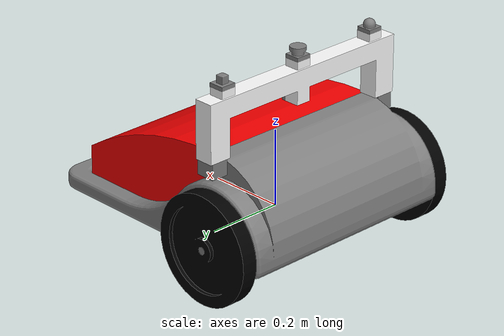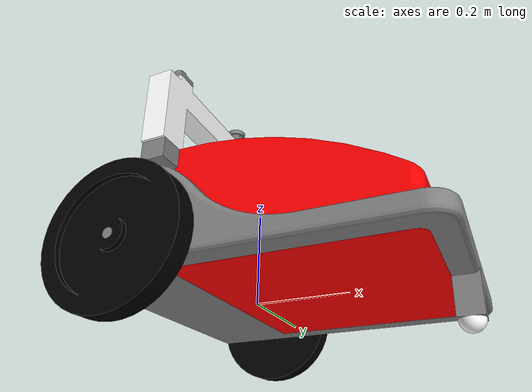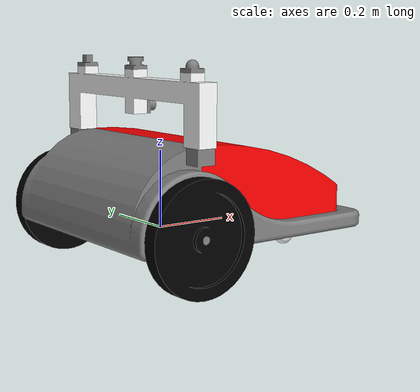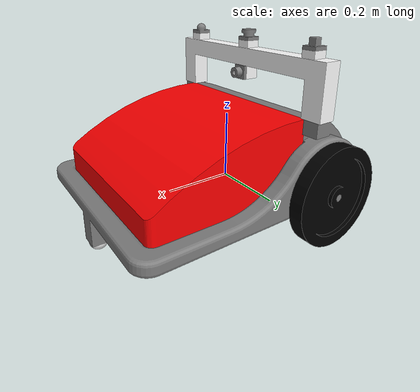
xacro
<?xml version="1.0" encoding="utf-8"?>
<robot
  name="sweeper_robot_description_package" xmlns:xacro="http:/www.ros.org/wiki/xacro">

  <xacro:include filename="$(find sweeper_robot_gazebo_package)/config/sweeper_robot_materials.gazebo" />
	<xacro:include filename="$(find sweeper_robot_gazebo_package)/config/sweeper_robot_physics.gazebo" />

  <link
    name="base_link">
    <inertial>
      <origin
        xyz="-0.086172 -1.9871E-10 0.093022"
        rpy="0 0 0" />
      <mass
        value="27.698" />
      <inertia
        ixx="1.0708"
        ixy="3.4417E-10"
        ixz="0.076631"
        iyy="0.74624"
        iyz="6.0482E-10"
        izz="1.5811" />
    </inertial>
    <visual>
      <origin
        xyz="0 0 0"
        rpy="0 0 0" />
      <geometry>
        <mesh
          filename="package://sweeper_robot_description_package/meshes/base_link.STL" />
      </geometry>
      <material
        name="">
        <color
          rgba="0.49804 0.49804 0.49804 1" />
      </material>
    </visual>
    <collision>
      <origin
        xyz="0 0 0"
        rpy="0 0 0" />
      <geometry>
        <mesh
          filename="package://sweeper_robot_description_package/meshes/base_link.STL" />
      </geometry>
    </collision>
  </link>
  <link
    name="left_wheel_link">
    <inertial>
      <origin
        xyz="0 -0.012515 -2.7756E-17"
        rpy="0 0 0" />
      <mass
        value="2.0986" />
      <inertia
        ixx="0.011156"
        ixy="1.763E-20"
        ixz="-2.2622E-20"
        iyy="0.02185"
        iyz="3.2087E-20"
        izz="0.011156" />
    </inertial>
    <visual>
      <origin
        xyz="0 0 0"
        rpy="0 0 0" />
      <geometry>
        <mesh
          filename="package://sweeper_robot_description_package/meshes/left_wheel_link.STL" />
      </geometry>
      <material
        name="">
        <color
          rgba="0 0 0 1" />
      </material>
    </visual>
    <collision>
      <origin
        xyz="0 0 0"
        rpy="0 0 0" />
      <geometry>
        <mesh
          filename="package://sweeper_robot_description_package/meshes/left_wheel_link.STL" />
      </geometry>
    </collision>
  </link>
  <joint
    name="left_wheel_joint"
    type="continuous">
    <origin
      xyz="-0.10575 0.33 0.04"
      rpy="0 0 0" />
    <parent
      link="base_link" />
    <child
      link="left_wheel_link" />
    <axis
      xyz="0 1 0" />
    <limit
      effort="100"
      velocity="100" />
    <dynamics
      damping="0"
      friction="0" />
  </joint>
  <link
    name="right_wheel_link">
    <inertial>
      <origin
        xyz="-2.7756E-17 0.012515 5.5511E-17"
        rpy="0 0 0" />
      <mass
        value="2.0986" />
      <inertia
        ixx="0.011156"
        ixy="-6.7547E-20"
        ixz="-2.1429E-18"
        iyy="0.02185"
        iyz="-1.826E-20"
        izz="0.011156" />
    </inertial>
    <visual>
      <origin
        xyz="0 0 0"
        rpy="0 0 0" />
      <geometry>
        <mesh
          filename="package://sweeper_robot_description_package/meshes/right_wheel_link.STL" />
      </geometry>
      <material
        name="">
        <color
          rgba="0 0 0 1" />
      </material>
    </visual>
    <collision>
      <origin
        xyz="0 0 0"
        rpy="0 0 0" />
      <geometry>
        <mesh
          filename="package://sweeper_robot_description_package/meshes/right_wheel_link.STL" />
      </geometry>
    </collision>
  </link>
  <joint
    name="right_wheel_joint"
    type="continuous">
    <origin
      xyz="-0.10575 -0.33 0.04"
      rpy="0 0 0" />
    <parent
      link="base_link" />
    <child
      link="right_wheel_link" />
    <axis
      xyz="0 1 0" />
    <limit
      effort="100"
      velocity="100" />
    <dynamics
      damping="0"
      friction="0" />
  </joint>
  <link
    name="castor_wheel_link">
    <inertial>
      <origin
        xyz="0 0 -3.4694E-18"
        rpy="0 0 0" />
      <mass
        value="0.06545" />
      <inertia
        ixx="1.6362E-05"
        ixy="0"
        ixz="0"
        iyy="1.6362E-05"
        iyz="0"
        izz="1.6362E-05" />
    </inertial>
    <visual>
      <origin
        xyz="0 0 0"
        rpy="0 0 0" />
      <geometry>
        <mesh
          filename="package://sweeper_robot_description_package/meshes/castor_wheel_link.STL" />
      </geometry>
      <material
        name="">
        <color
          rgba="1 1 1 1" />
      </material>
    </visual>
    <collision>
      <origin
        xyz="0 0 0"
        rpy="0 0 0" />
      <geometry>
        <mesh
          filename="package://sweeper_robot_description_package/meshes/castor_wheel_link.STL" />
      </geometry>
    </collision>
  </link>
  <joint
    name="castor_wheel_joint"
    type="continuous">
    <origin
      xyz="0.42277 0 -0.075"
      rpy="0 0 0" />
    <parent
      link="base_link" />
    <child
      link="castor_wheel_link" />
    <axis
      xyz="0 1 0" />
    <limit
      effort="100"
      velocity="100" />
    <dynamics
      damping="0"
      friction="0" />
  </joint>
  <link
    name="waste_box_link">
    <inertial>
      <origin
        xyz="-0.033526 -1.927E-08 -0.09164"
        rpy="0 0 0" />
      <mass
        value="44.279" />
      <inertia
        ixx="1.0977"
        ixy="1.2689E-07"
        ixz="0.095945"
        iyy="0.85203"
        iyz="9.0013E-09"
        izz="1.5979" />
    </inertial>
    <visual>
      <origin
        xyz="0 0 0"
        rpy="0 0 0" />
      <geometry>
        <mesh
          filename="package://sweeper_robot_description_package/meshes/waste_box_link.STL" />
      </geometry>
      <material
        name="">
        <color
          rgba="1 0 0 1" />
      </material>
    </visual>
    <collision>
      <origin
        xyz="0 0 0"
        rpy="0 0 0" />
      <geometry>
        <mesh
          filename="package://sweeper_robot_description_package/meshes/waste_box_link.STL" />
      </geometry>
    </collision>
  </link>
  <joint
    name="waste_box_joint"
    type="fixed">
    <origin
      xyz="0.18015 0 0.19441"
      rpy="0 0 0" />
    <parent
      link="base_link" />
    <child
      link="waste_box_link" />
    <axis
      xyz="0 0 0" />
  </joint>
  <link
    name="sensor_mount_link">
    <inertial>
      <origin
        xyz="0 0 0"
        rpy="0 0 0" />
      <mass
        value="0" />
      <inertia
        ixx="0"
        ixy="0"
        ixz="0"
        iyy="0"
        iyz="0"
        izz="0" />
    </inertial>
    <visual>
      <origin
        xyz="0 0 0"
        rpy="0 0 0" />
      <geometry>
        <mesh
          filename="package://sweeper_robot_description_package/meshes/sensor_mount_link.STL" />
      </geometry>
      <material
        name="">
        <color
          rgba="1 1 1 1" />
      </material>
    </visual>
    <collision>
      <origin
        xyz="0 0 0"
        rpy="0 0 0" />
      <geometry>
        <mesh
          filename="package://sweeper_robot_description_package/meshes/sensor_mount_link.STL" />
      </geometry>
    </collision>
  </link>
  <joint
    name="sensor_mount_joint"
    type="fixed">
    <origin
      xyz="-0.047234 0 0.34357"
      rpy="0 0 0" />
    <parent
      link="base_link" />
    <child
      link="sensor_mount_link" />
    <axis
      xyz="0 0 0" />
  </joint>
  <link
    name="camera_sensor_link">
    <inertial>
      <origin
        xyz="0.011229 -8.7093E-19 0"
        rpy="0 0 0" />
      <mass
        value="0.02837" />
      <inertia
        ixx="5.8074E-06"
        ixy="-6.2118E-22"
        ixz="-4.6995E-22"
        iyy="4.8668E-06"
        iyz="6.3668E-22"
        izz="4.8668E-06" />
    </inertial>
    <visual>
      <origin
        xyz="0 0 0"
        rpy="0 0 0" />
      <geometry>
        <mesh
          filename="package://sweeper_robot_description_package/meshes/camera_sensor_link.STL" />
      </geometry>
      <material
        name="">
        <color
          rgba="0.49804 0.49804 0.49804 1" />
      </material>
    </visual>
    <collision>
      <origin
        xyz="0 0 0"
        rpy="0 0 0" />
      <geometry>
        <mesh
          filename="package://sweeper_robot_description_package/meshes/camera_sensor_link.STL" />
      </geometry>
    </collision>
  </link>
  <joint
    name="camera_sensor_joint"
    type="fixed">
    <origin
      xyz="-0.005 0 -0.023571"
      rpy="0 0 0" />
    <parent
      link="sensor_mount_link" />
    <child
      link="camera_sensor_link" />
    <axis
      xyz="0 0 0" />
  </joint>
  <link
    name="lidar_sensor_link">
    <inertial>
      <origin
        xyz="2.7756E-17 -1.2055E-18 0.014036"
        rpy="0 0 0" />
      <mass
        value="0.035635" />
      <inertia
        ixx="6.9081E-06"
        ixy="2.0325E-22"
        ixz="4.4771E-22"
        iyy="6.9081E-06"
        iyz="3.6061E-22"
        izz="7.5752E-06" />
    </inertial>
    <visual>
      <origin
        xyz="0 0 0"
        rpy="0 0 0" />
      <geometry>
        <mesh
          filename="package://sweeper_robot_description_package/meshes/lidar_sensor_link.STL" />
      </geometry>
      <material
        name="">
        <color
          rgba="0.49804 0.49804 0.49804 1" />
      </material>
    </visual>
    <collision>
      <origin
        xyz="0 0 0"
        rpy="0 0 0" />
      <geometry>
        <mesh
          filename="package://sweeper_robot_description_package/meshes/lidar_sensor_link.STL" />
      </geometry>
    </collision>
  </link>
  <joint
    name="lidar_sensor_joint"
    type="fixed">
    <origin
      xyz="-0.025 0 0.066429"
      rpy="0 0 0" />
    <parent
      link="sensor_mount_link" />
    <child
      link="lidar_sensor_link" />
    <axis
      xyz="0 0 0" />
  </joint>
  <link
    name="imu_sensor_link">
    <inertial>
      <origin
        xyz="0 0 0.0099464"
        rpy="0 0 0" />
      <mass
        value="0.023934" />
      <inertia
        ixx="3.9708E-06"
        ixy="9.5046E-22"
        ixz="1.1698E-21"
        iyy="3.9708E-06"
        iyz="2.2101E-21"
        izz="4.792E-06" />
    </inertial>
    <visual>
      <origin
        xyz="0 0 0"
        rpy="0 0 0" />
      <geometry>
        <mesh
          filename="package://sweeper_robot_description_package/meshes/imu_sensor_link.STL" />
      </geometry>
      <material
        name="">
        <color
          rgba="0.49804 0.49804 0.49804 1" />
      </material>
    </visual>
    <collision>
      <origin
        xyz="0 0 0"
        rpy="0 0 0" />
      <geometry>
        <mesh
          filename="package://sweeper_robot_description_package/meshes/imu_sensor_link.STL" />
      </geometry>
    </collision>
  </link>
  <joint
    name="imu_sensor_joint"
    type="fixed">
    <origin
      xyz="-0.025 0.24 0.066429"
      rpy="0 0 0" />
    <parent
      link="sensor_mount_link" />
    <child
      link="imu_sensor_link" />
    <axis
      xyz="0 0 0" />
  </joint>
  <link
    name="gps_sensor_link">
    <inertial>
      <origin
        xyz="2.77555756156289E-17 0 0.010148082817463"
        rpy="0 0 0" />
      <mass
        value="0.0266028752058656" />
      <inertia
        ixx="4.10483456553734E-06"
        ixy="6.98855788273099E-22"
        ixz="4.49576785173826E-22"
        iyy="4.10483456553734E-06"
        iyz="-4.41428267117635E-22"
        izz="5.30044699923857E-06" />
    </inertial>
    <visual>
      <origin
        xyz="0 0 0"
        rpy="0 0 0" />
      <geometry>
        <mesh
          filename="package://sweeper_robot_description_package/meshes/gps_sensor_link.STL" />
      </geometry>
      <material
        name="">
        <color
          rgba="0.498039215686275 0.498039215686275 0.498039215686275 1" />
      </material>
    </visual>
    <collision>
      <origin
        xyz="0 0 0"
        rpy="0 0 0" />
      <geometry>
        <mesh
          filename="package://sweeper_robot_description_package/meshes/gps_sensor_link.STL" />
      </geometry>
    </collision>
  </link>
  <joint
    name="gps_sensor_joint"
    type="fixed">
    <origin
      xyz="-0.025 -0.24 0.066429"
      rpy="0 0 0" />
    <parent
      link="sensor_mount_link" />
    <child
      link="gps_sensor_link" />
    <axis
      xyz="0 0 0" />
  </joint>

</robot>

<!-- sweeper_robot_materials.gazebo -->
<robot name="sweeper_robot_description_package" xmlns:xacro="http://www.ros.org/wiki/xacro" >

<xacro:property name="base_color" value="Gazebo/Grey" />
<xacro:property name="waste_box_color" value="Gazebo/Red" />
<xacro:property name="right_wheel_color" value="Gazebo/Black" />
<xacro:property name="left_wheel_color" value="Gazebo/Black" />
<xacro:property name="castor_wheel_color" value="Gazebo/White" />
<xacro:property name="sensor_mount_color" value="Gazebo/White" />
<xacro:property name="lidar_sensor_color" value="Gazebo/Black" />
<xacro:property name="camera_sensor_color" value="Gazebo/Black" />
<xacro:property name="gps_sensor_color" value="Gazebo/Grey" />
<xacro:property name="imu_sensor_color" value="Gazebo/Grey" />

<!--  ##########  BODY COLOR  ##########  -->

<gazebo reference="base_link">
  <material>${base_color}</material>
</gazebo>

<gazebo reference="waste_box_link">
  <material>${waste_box_color}</material>
</gazebo>

<!--  ##########  WHEEL COLOR  ##########  -->

<gazebo reference="right_wheel_link">
  <material>${right_wheel_color}</material>
</gazebo>

<gazebo reference="left_wheel_link">
  <material>${left_wheel_color}</material>
</gazebo>

<!--  ##########  CASTER COLOR  ##########  -->

<gazebo reference="castor_wheel_link">
  <material>${castor_wheel_color}</material>
</gazebo>

<!--  ##########  Sensor Mount ##########  -->

<gazebo reference="sensor_mount_link">
  <material>${sensor_mount_color}</material>
</gazebo>

<gazebo reference="lidar_sensor_link">
  <material>${lidar_sensor_color}</material>
</gazebo>

<gazebo reference="camera_sensor_link">
  <material>${camera_sensor_color}</material>
</gazebo>

<gazebo reference="gps_sensor_link">
  <material>${gps_sensor_color}</material>
</gazebo>

<gazebo reference="imu_sensor_link">
  <material>${imu_sensor_color}</material>
</gazebo>

</robot>
